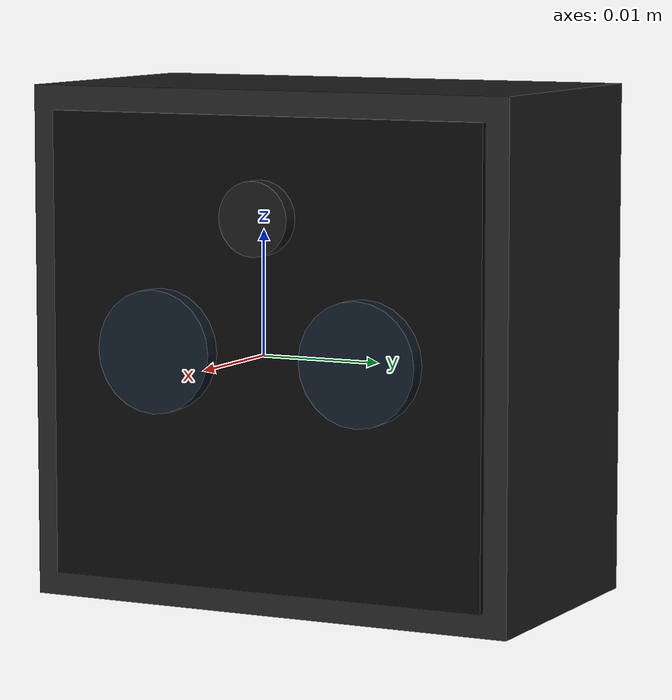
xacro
<?xml version="1.0"?>
<robot xmlns:xacro="http://ros.org/wiki/xacro" name="gemini_305">

  <link name="gemini305_link">
    <inertial>
      <origin xyz="-0.0115 0 0" rpy="0 0 0"/>
      <mass value="0.068"/>
      <inertia
        ixx="1.9992e-05" ixy="0" ixz="0"
        iyy="1.2997e-05" iyz="0" izz="1.2997e-05"/>
    </inertial>
    <!-- The link origin is on the front sensor plane; the housing extends backward. -->
    <visual name="housing">
      <origin xyz="-0.0115 0 0" rpy="0 0 0"/>
      <geometry>
        <!-- Depth x width x height: 23 x 42 x 42 mm. -->
        <box size="0.023 0.042 0.042"/>
      </geometry>
      <material name="gemini305_body_material">
        <color rgba="0.12 0.12 0.12 1"/>
      </material>
    </visual>
    <visual name="front_panel">
      <origin xyz="0.00025 0 0" rpy="0 0 0"/>
      <geometry>
        <box size="0.0005 0.038 0.038"/>
      </geometry>
      <material name="gemini305_front_material">
        <color rgba="0.025 0.025 0.025 1"/>
      </material>
    </visual>
    <visual name="left_stereo_lens">
      <origin xyz="0.001 0.009 0" rpy="0 1.57079632679 0"/>
      <geometry>
        <cylinder radius="0.005" length="0.002"/>
      </geometry>
      <material name="gemini305_lens_material">
        <color rgba="0.04 0.08 0.13 1"/>
      </material>
    </visual>
    <visual name="right_stereo_lens">
      <origin xyz="0.001 -0.009 0" rpy="0 1.57079632679 0"/>
      <geometry>
        <cylinder radius="0.005" length="0.002"/>
      </geometry>
      <material name="gemini305_lens_material"/>
    </visual>
    <visual name="center_sensor">
      <origin xyz="0.001 0 0.011" rpy="0 1.57079632679 0"/>
      <geometry>
        <cylinder radius="0.003" length="0.002"/>
      </geometry>
      <material name="gemini305_center_sensor_material">
        <color rgba="0.08 0.08 0.08 1"/>
      </material>
    </visual>
    <collision>
      <origin xyz="-0.0115 0 0" rpy="0 0 0"/>
      <geometry>
        <box size="0.023 0.042 0.042"/>
      </geometry>
    </collision>
  </link>

  <link name="gemini305_depth_frame"/>
  <joint name="gemini305_depth_joint" type="fixed">
    <parent link="gemini305_link"/>
    <child link="gemini305_depth_frame"/>
    <origin xyz="0 0 0" rpy="0 0 0"/>
  </joint>

  <link name="gemini305_depth_optical_frame"/>
  <joint name="gemini305_depth_optical_joint" type="fixed">
    <parent link="gemini305_depth_frame"/>
    <child link="gemini305_depth_optical_frame"/>
    <origin xyz="0 0 0" rpy="-1.57079632679 0 -1.57079632679"/>
  </joint>

  <link name="gemini305_color_frame"/>
  <joint name="gemini305_color_joint" type="fixed">
    <parent link="gemini305_link"/>
    <child link="gemini305_color_frame"/>
    <origin xyz="0 0 0" rpy="0 0 0"/>
  </joint>

  <link name="gemini305_color_optical_frame"/>
  <joint name="gemini305_color_optical_joint" type="fixed">
    <parent link="gemini305_color_frame"/>
    <child link="gemini305_color_optical_frame"/>
    <origin xyz="0 0 0" rpy="-1.57079632679 0 -1.57079632679"/>
  </joint>
</robot>
